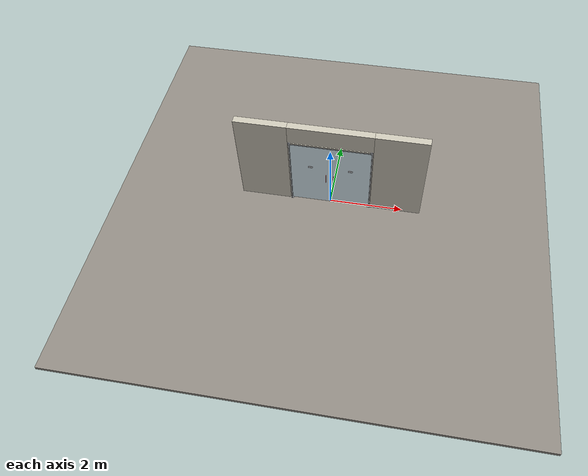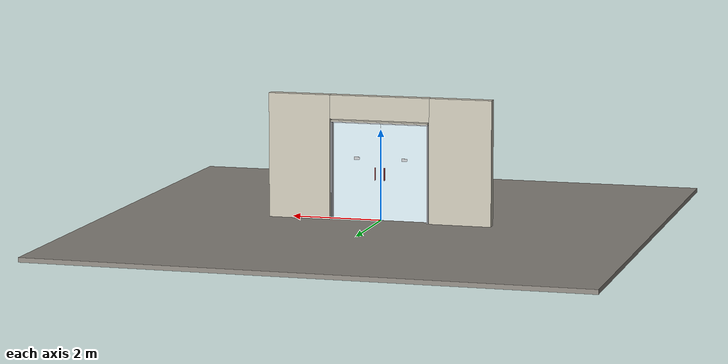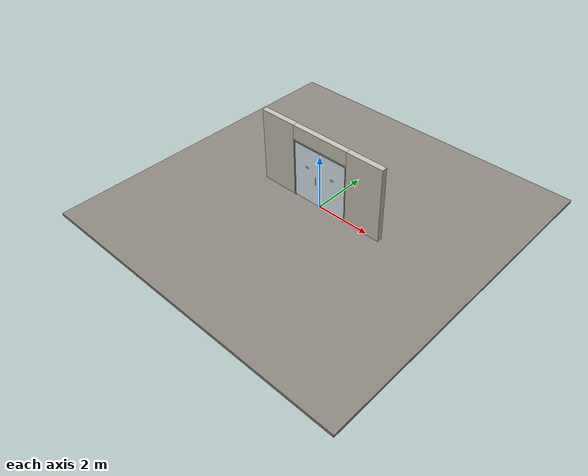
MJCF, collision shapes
<?xml version="1.0" ?>
<mujoco model="db0643_swing_double_full">
  <compiler angle="radian" meshdir="../../hardware" texturedir="../../textures" autolimits="true" inertiafromgeom="false"/>
  <option timestep="0.002" integrator="implicitfast" cone="elliptic" impratio="10" noslip_iterations="3">
    <flag multiccd="enable"/>
  </option>
  <size memory="16M"/>
  <default>
    <geom condim="4" solref="0.005 1" solimp="0.95 0.99 0.001"/>
    <joint solreflimit="0.005 1" solimplimit="0.95 0.99 0.001"/>
    <tendon solreflimit="0.005 1"/>
    <equality solref="0.002 1"/>
  </default>
  <visual>
    <headlight ambient="0.4 0.4 0.4" diffuse="0.7 0.7 0.7" specular="0.2 0.2 0.2"/>
    <quality shadowsize="4096"/>
    <map znear="0.01" zfar="60"/>
  </visual>
  <asset>
    <mesh name="pull_f8d79d6331" file="pull_f8d79d6331.obj"/>
    <material name="mat_floor" rgba="0.55 0.53 0.5 1" specular="0.2" shininess="0.15" reflectance="0"/>
    <material name="mat_wall" rgba="0.78 0.76 0.7 1" specular="0.2" shininess="0.1" reflectance="0"/>
    <material name="mat_leaf_a" rgba="0.85 0.92 0.95 0.25" specular="0.2" shininess="0.95" reflectance="0.1"/>
    <material name="mat_glass_leaf" rgba="0.85 0.92 0.95 0.25" specular="0.2" shininess="0.95" reflectance="0.1"/>
    <material name="mat_patch" rgba="0.75 0.76 0.77 1" specular="0.8" shininess="0.65" reflectance="0.4"/>
    <material name="mat_hinge" rgba="0.65 0.66 0.68 1" specular="0.74" shininess="0.5" reflectance="0.36"/>
    <material name="mat_op_stainless" rgba="0.75 0.76 0.77 1" specular="0.8" shininess="0.65" reflectance="0.4"/>
    <material name="mat_closer" rgba="0.22 0.17 0.13 1" specular="0.8" shininess="0.6" reflectance="0.4"/>
    <material name="mat_sign" rgba="0.75 0.76 0.77 1" specular="0.8" shininess="0.65" reflectance="0.4"/>
    <material name="mat_leaf_b" rgba="0.85 0.92 0.95 0.25" specular="0.2" shininess="0.95" reflectance="0.1"/>
    <material name="mat_frame" rgba="0.8 0.81 0.83 1" specular="0.8" shininess="0.6" reflectance="0.4"/>
    <texture name="skybox" type="skybox" builtin="gradient" rgb1="0.6 0.7 0.85" rgb2="0.9 0.92 0.95" width="256" height="256"/>
  </asset>
  <worldbody>
    <light name="sun" pos="1.5 -2.5 4" dir="-0.3 0.5 -0.8" directional="true" diffuse="0.8 0.8 0.8" specular="0.3 0.3 0.3" castshadow="true"/>
    <light name="fill" pos="-1.5 2.5 3" dir="0.3 -0.5 -0.7" directional="true" diffuse="0.35 0.35 0.4" castshadow="false"/>
    <camera name="robot_view" pos="0 -2.580312 1.812087" xyaxes="1 0 0 0 0.26963 0.962964" fovy="52"/>
    <camera name="far_view" pos="0 2.695312 1.812087" xyaxes="-1 0 0 0 -0.26963 0.962964" fovy="52"/>
    <camera name="iso" pos="-2.004737 -2.158262 2.234138" xyaxes="0.741536 -0.670913 0 0.242917 0.268487 0.932151" fovy="46"/>
    <camera name="detail_handle" pos="0.0735 -0.8975 1.32" xyaxes="0.97561 0.219512 0 -0.070934 0.315262 0.94635" fovy="38"/>
    <geom name="floor" type="box" size="6 6 0.05" pos="0 0 -0.05" material="mat_floor" group="0" contype="1" conaffinity="1" friction="0.8 0.005 0.0001" density="2400"/>
    <geom name="wall_left" type="box" size="0.69175 0.1 1.3735" pos="-1.80825 0.0575 1.3735" material="mat_wall" group="0" contype="1" conaffinity="1" friction="0.6 0.005 0.0001" density="800"/>
    <geom name="wall_right" type="box" size="0.69175 0.1 1.3735" pos="1.80825 0.0575 1.3735" material="mat_wall" group="0" contype="1" conaffinity="1" friction="0.6 0.005 0.0001" density="800"/>
    <geom name="wall_header" type="box" size="1.1165 0.1 0.2625" pos="0 0.0575 2.4845" material="mat_wall" group="0" contype="1" conaffinity="1" friction="0.6 0.005 0.0001" density="800"/>
    <geom name="pivot_bottom_socket" type="box" size="0.035 0.035 0.0085" pos="-1.0685 -0.0295 -0.0015" material="mat_hinge" group="1" contype="0" conaffinity="0" density="7850"/>
    <geom name="pivot_top_bracket" type="box" size="0.035 0.035 0.0355" pos="-1.0685 -0.0295 2.1865" material="mat_hinge" group="1" contype="0" conaffinity="0" density="7850"/>
    <geom name="closer_concealed_slot" type="box" size="0.25 0.008 0.004" pos="-0.7715 -0.0325 2.152" material="mat_closer" group="1" contype="0" conaffinity="0" density="2700"/>
    <geom name="pivot_bottom_socket_2" type="box" size="0.035 0.035 0.0085" pos="1.0685 -0.0295 -0.0015" material="mat_hinge" group="1" contype="0" conaffinity="0" density="7850"/>
    <geom name="pivot_top_bracket_2" type="box" size="0.035 0.035 0.0355" pos="1.0685 -0.0295 2.1865" material="mat_hinge" group="1" contype="0" conaffinity="0" density="7850"/>
    <geom name="closer_concealed_slot_2" type="box" size="0.25 0.008 0.004" pos="0.7715 -0.0325 2.152" material="mat_closer" group="1" contype="0" conaffinity="0" density="2700"/>
    <geom name="jamb_l" type="box" size="0.0095 0.1 1.0735" pos="-1.081 0.0575 1.0735" material="mat_frame" group="0" contype="1" conaffinity="1" friction="0.6 0.005 0.0001" density="300"/>
    <geom name="jamb_r" type="box" size="0.0095 0.1 1.0735" pos="1.081 0.0575 1.0735" material="mat_frame" group="0" contype="1" conaffinity="1" friction="0.6 0.005 0.0001" density="300"/>
    <geom name="jamb_head" type="box" size="1.0905 0.1 0.0095" pos="0 0.0575 2.1565" material="mat_frame" group="0" contype="1" conaffinity="1" friction="0.6 0.005 0.0001" density="300"/>
    <geom name="head_stud" type="box" size="1.0905 0.1 0.015" pos="0 0.0575 2.181" material="mat_wall" group="0" contype="1" conaffinity="1" friction="0.6 0.005 0.0001" density="500"/>
    <site name="approach_point" pos="0 -1.5 0" quat="1 0 0 0" size="0.05" rgba="0.2 0.9 0.2 0.5" group="4"/>
    <site name="goal_point" pos="0 1.5 0" quat="1 0 0 0" size="0.05" rgba="0.2 0.9 0.2 0.5" group="4"/>
    <site name="door_plane_center" pos="0 0 1.0735" quat="1 0 0 0" size="0.02" rgba="0.2 0.9 0.2 0.5" group="4"/>
    <site name="approach_point_2" pos="0 -1.5 0" quat="1 0 0 0" size="0.05" rgba="0.2 0.9 0.2 0.5" group="4"/>
    <site name="goal_point_2" pos="0 1.5 0" quat="1 0 0 0" size="0.05" rgba="0.2 0.9 0.2 0.5" group="4"/>
    <site name="door_plane_center_2" pos="0 0 1.0735" quat="1 0 0 0" size="0.02" rgba="0.2 0.9 0.2 0.5" group="4"/>
    <site name="approach_point_3" pos="0 -1.5 0" quat="1 0 0 0" size="0.05" rgba="0.2 0.9 0.2 0.5" group="4"/>
    <site name="goal_point_3" pos="0 1.5 0" quat="1 0 0 0" size="0.05" rgba="0.2 0.9 0.2 0.5" group="4"/>
    <site name="door_plane_center_3" pos="0 0 1.0735" quat="1 0 0 0" size="0.02" rgba="0.2 0.9 0.2 0.5" group="4"/>
    <body name="leaf_a" pos="-1.0715 0 0">
      <inertial pos="0.548566 -0.000025 1.075778" mass="112.327116" quat="-0.499675 0.499604 0.500396 0.500325" diaginertia="10.874283121 41.586150442 52.375634077"/>
      <joint name="leaf_a_hinge" type="hinge" axis="0 0 -1" pos="0.003 -0.0295 0" limited="true" range="0 1.570796" solreflimit="0.02 1" damping="10.49954" frictionloss="2.517336" stiffness="30.914256" springref="-2.113588" armature="0.02"/>
      <geom name="leaf_a_glass" type="box" size="0.532 0.0225 1.067" pos="0.538 0 1.076" material="mat_glass_leaf" group="0" contype="1" conaffinity="1" friction="0.4 0.005 0.0001" density="1"/>
      <geom name="pivot_bottom" type="cylinder" size="0.014 0.004" pos="0.003 -0.0295 0.004" material="mat_hinge" group="1" contype="0" conaffinity="0" density="7850"/>
      <geom name="pivot_top" type="cylinder" size="0.014 0.004" pos="0.003 -0.0295 2.147" material="mat_hinge" group="1" contype="0" conaffinity="0" density="7850"/>
      <geom name="leaf_a_pull_n" type="mesh" mesh="pull_f8d79d6331" pos="0.965 -0.0225 1.04" quat="0.707107 0.707107 0 0" material="mat_op_stainless" group="1" contype="0" conaffinity="0" density="3000"/>
      <geom name="leaf_a_pull_col_n" type="capsule" size="0.0125 0.13" pos="0.965 -0.0975 1.04" material="mat_op_stainless" group="3" contype="1" conaffinity="1" rgba="0.8 0.3 0.3 0.25" friction="0.7 0.01 0.0001" density="3000"/>
      <geom name="leaf_a_pull_p" type="mesh" mesh="pull_f8d79d6331" pos="0.965 0.0225 1.04" quat="-0.707107 0.707107 0 0" material="mat_op_stainless" group="1" contype="0" conaffinity="0" density="3000"/>
      <geom name="leaf_a_pull_col_p" type="capsule" size="0.0125 0.13" pos="0.965 0.0975 1.04" material="mat_op_stainless" group="3" contype="1" conaffinity="1" rgba="0.8 0.3 0.3 0.25" friction="0.7 0.01 0.0001" density="3000"/>
      <geom name="sign_push" type="box" size="0.06 0.001 0.03" pos="0.538 0.0235 1.359" material="mat_sign" group="2" contype="0" conaffinity="0" density="7900"/>
      <geom name="sign_pull" type="box" size="0.06 0.001 0.03" pos="0.538 -0.0235 1.359" material="mat_sign" group="2" contype="0" conaffinity="0" density="7900"/>
      <site name="leaf_a_pull_grip_n" pos="0.965 -0.0975 1.04" quat="1 0 0 0" size="0.012" rgba="0.2 0.9 0.2 0.5" group="4"/>
      <site name="leaf_a_pull_grip_p" pos="0.965 0.0975 1.04" quat="1 0 0 0" size="0.012" rgba="0.2 0.9 0.2 0.5" group="4"/>
      <site name="leaf_a_edge_mid" pos="1.07 0 1.067" quat="1 0 0 0" size="0.02" rgba="0.2 0.9 0.2 0.5" group="4"/>
    </body>
    <body name="leaf_b" pos="1.0715 0 0">
      <inertial pos="-0.548566 -0.000025 1.075778" mass="112.327116" quat="0.500325 -0.500396 -0.499604 -0.499675" diaginertia="10.874283121 41.586150442 52.375634077"/>
      <joint name="leaf_b_hinge" type="hinge" axis="0 0 1" pos="-0.003 -0.0295 0" limited="true" range="0 1.570796" solreflimit="0.02 1" damping="10.49954" frictionloss="2.517336" stiffness="30.914256" springref="-2.113588" armature="0.02"/>
      <geom name="leaf_b_glass" type="box" size="0.532 0.0225 1.067" pos="-0.538 0 1.076" material="mat_glass_leaf" group="0" contype="1" conaffinity="1" friction="0.4 0.005 0.0001" density="1"/>
      <geom name="pivot_bottom_2" type="cylinder" size="0.014 0.004" pos="-0.003 -0.0295 0.004" material="mat_hinge" group="1" contype="0" conaffinity="0" density="7850"/>
      <geom name="pivot_top_2" type="cylinder" size="0.014 0.004" pos="-0.003 -0.0295 2.147" material="mat_hinge" group="1" contype="0" conaffinity="0" density="7850"/>
      <geom name="leaf_b_pull_n" type="mesh" mesh="pull_f8d79d6331" pos="-0.965 -0.0225 1.04" quat="0 0 -0.707107 0.707107" material="mat_op_stainless" group="1" contype="0" conaffinity="0" density="3000"/>
      <geom name="leaf_b_pull_col_n" type="capsule" size="0.0125 0.13" pos="-0.965 -0.0975 1.04" material="mat_op_stainless" group="3" contype="1" conaffinity="1" rgba="0.8 0.3 0.3 0.25" friction="0.7 0.01 0.0001" density="3000"/>
      <geom name="leaf_b_pull_p" type="mesh" mesh="pull_f8d79d6331" pos="-0.965 0.0225 1.04" quat="0 0 0.707107 0.707107" material="mat_op_stainless" group="1" contype="0" conaffinity="0" density="3000"/>
      <geom name="leaf_b_pull_col_p" type="capsule" size="0.0125 0.13" pos="-0.965 0.0975 1.04" material="mat_op_stainless" group="3" contype="1" conaffinity="1" rgba="0.8 0.3 0.3 0.25" friction="0.7 0.01 0.0001" density="3000"/>
      <geom name="sign_push_2" type="box" size="0.06 0.001 0.03" pos="-0.538 0.0235 1.359" material="mat_sign" group="2" contype="0" conaffinity="0" density="7900"/>
      <geom name="sign_pull_2" type="box" size="0.06 0.001 0.03" pos="-0.538 -0.0235 1.359" material="mat_sign" group="2" contype="0" conaffinity="0" density="7900"/>
      <site name="leaf_b_pull_grip_n" pos="-0.965 -0.0975 1.04" quat="1 0 0 0" size="0.012" rgba="0.2 0.9 0.2 0.5" group="4"/>
      <site name="leaf_b_pull_grip_p" pos="-0.965 0.0975 1.04" quat="1 0 0 0" size="0.012" rgba="0.2 0.9 0.2 0.5" group="4"/>
      <site name="leaf_b_edge_mid" pos="-1.07 0 1.067" quat="1 0 0 0" size="0.02" rgba="0.2 0.9 0.2 0.5" group="4"/>
    </body>
  </worldbody>
  <sensor>
    <jointpos name="leaf_a_hinge_pos" joint="leaf_a_hinge"/>
    <jointvel name="leaf_a_hinge_vel" joint="leaf_a_hinge"/>
    <jointpos name="leaf_b_hinge_pos" joint="leaf_b_hinge"/>
    <jointvel name="leaf_b_hinge_vel" joint="leaf_b_hinge"/>
  </sensor>
</mujoco>
